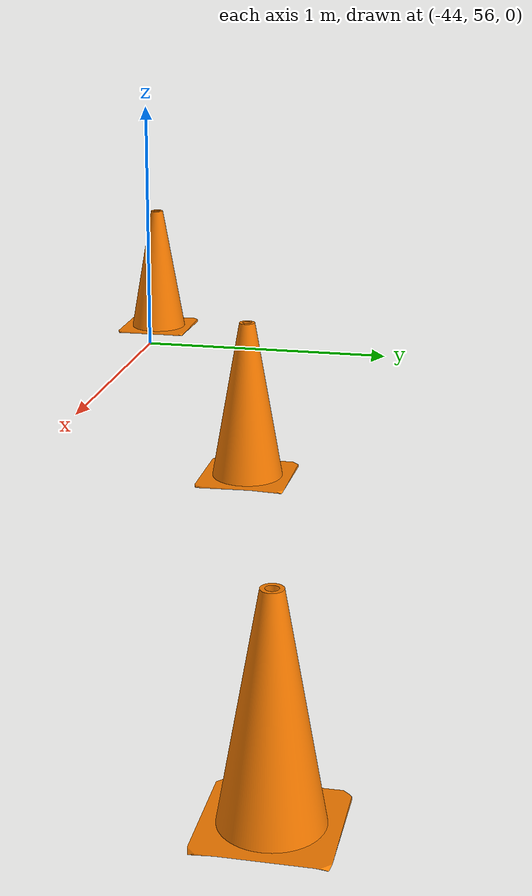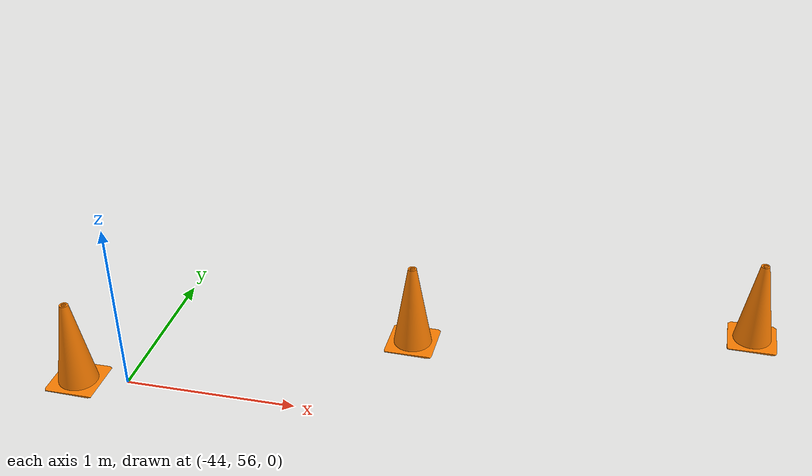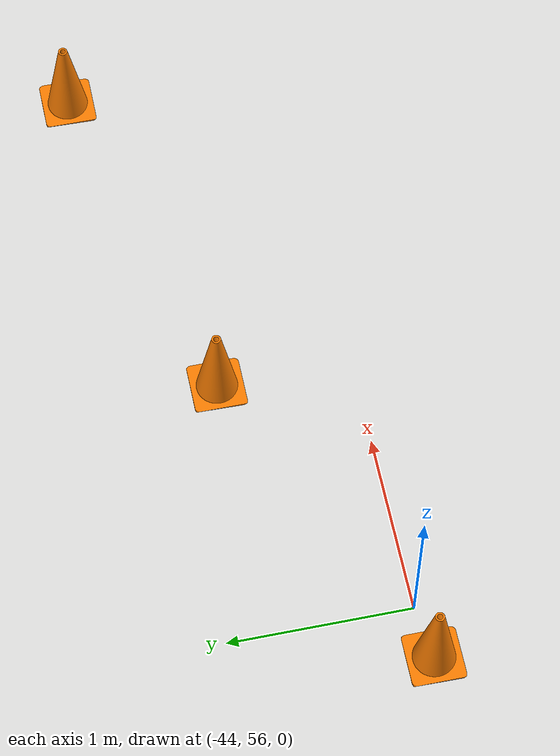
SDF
<sdf version="1.7">
 <world name="IARRC Urban">
  <model name="TallerCone_clone_105">
   <link name="link_0">
    <inertial>
     <mass>0.068</mass>
     <inertia>
      <ixx>0.000367263</ixx>
      <ixy>0</ixy>
      <ixz>0</ixz>
      <iyy>0.000367263</iyy>
      <iyz>0</iyz>
      <izz>0.000165927</izz>
     </inertia>
    </inertial>
    <visual name="visual">
     <geometry><mesh><uri>model://TallerCone/traffic_cone.stl</uri><scale>0.01 0.01 0.01</scale></mesh></geometry>
     <material>
      <lighting>1</lighting>
      <script><uri>file://media/materials/scripts/gazebo.material</uri><name>Gazebo/Grey</name></script>
      <ambient>0.4 0.2 0 1</ambient>
      <diffuse>1 0.5 0 1</diffuse>
      <specular>0.01 0.01 0.01 1</specular>
      <emissive>0 0 0 1</emissive>
     </material>
    </visual>
    <collision name="collision">
     <geometry><mesh><uri>model://TallerCone/traffic_cone.stl</uri></mesh></geometry>
     <surface>
      <friction>
       <ode><mu>1</mu><mu2>1</mu2><fdir1>0 0 0</fdir1><slip1>0</slip1><slip2>0</slip2></ode>
       <torsional>
        <coefficient>1</coefficient>
        <patch_radius>0</patch_radius>
        <surface_radius>0</surface_radius>
        <use_patch_radius>1</use_patch_radius>
        <ode><slip>0</slip></ode>
       </torsional>
      </friction>
      <bounce><restitution_coefficient>0</restitution_coefficient><threshold>1e+06</threshold></bounce>
      <contact>
       <collide_without_contact>0</collide_without_contact>
       <collide_without_contact_bitmask>1</collide_without_contact_bitmask>
       <collide_bitmask>1</collide_bitmask>
       <ode>
        <soft_cfm>0</soft_cfm>
        <soft_erp>0.2</soft_erp>
        <kp>1e+13</kp>
        <kd>1</kd>
        <max_vel>0.01</max_vel>
        <min_depth>0</min_depth>
       </ode>
       <bullet>
        <split_impulse>1</split_impulse>
        <split_impulse_penetration_threshold>-0.01</split_impulse_penetration_threshold>
        <soft_cfm>0</soft_cfm>
        <soft_erp>0.2</soft_erp>
        <kp>1e+13</kp>
        <kd>1</kd>
       </bullet>
      </contact>
     </surface>
    </collision>
   </link>
   <static>1</static>
   <pose>-40.5088 57.229 -0.034283 0 -0 0</pose>
  </model>
  <model name="TallerCone_clone_106">
   <link name="link_0">
    <inertial>
     <mass>0.068</mass>
     <inertia>
      <ixx>0.000367263</ixx>
      <ixy>0</ixy>
      <ixz>0</ixz>
      <iyy>0.000367263</iyy>
      <iyz>0</iyz>
      <izz>0.000165927</izz>
     </inertia>
    </inertial>
    <visual name="visual">
     <geometry><mesh><uri>model://TallerCone/traffic_cone.stl</uri><scale>0.01 0.01 0.01</scale></mesh></geometry>
     <material>
      <lighting>1</lighting>
      <script><uri>file://media/materials/scripts/gazebo.material</uri><name>Gazebo/Grey</name></script>
      <ambient>0.4 0.2 0 1</ambient>
      <diffuse>1 0.5 0 1</diffuse>
      <specular>0.01 0.01 0.01 1</specular>
      <emissive>0 0 0 1</emissive>
     </material>
    </visual>
    <collision name="collision">
     <geometry><mesh><uri>model://TallerCone/traffic_cone.stl</uri></mesh></geometry>
     <surface>
      <friction>
       <ode><mu>1</mu><mu2>1</mu2><fdir1>0 0 0</fdir1><slip1>0</slip1><slip2>0</slip2></ode>
       <torsional>
        <coefficient>1</coefficient>
        <patch_radius>0</patch_radius>
        <surface_radius>0</surface_radius>
        <use_patch_radius>1</use_patch_radius>
        <ode><slip>0</slip></ode>
       </torsional>
      </friction>
      <bounce><restitution_coefficient>0</restitution_coefficient><threshold>1e+06</threshold></bounce>
      <contact>
       <collide_without_contact>0</collide_without_contact>
       <collide_without_contact_bitmask>1</collide_without_contact_bitmask>
       <collide_bitmask>1</collide_bitmask>
       <ode>
        <soft_cfm>0</soft_cfm>
        <soft_erp>0.2</soft_erp>
        <kp>1e+13</kp>
        <kd>1</kd>
        <max_vel>0.01</max_vel>
        <min_depth>0</min_depth>
       </ode>
       <bullet>
        <split_impulse>1</split_impulse>
        <split_impulse_penetration_threshold>-0.01</split_impulse_penetration_threshold>
        <soft_cfm>0</soft_cfm>
        <soft_erp>0.2</soft_erp>
        <kp>1e+13</kp>
        <kd>1</kd>
       </bullet>
      </contact>
     </surface>
    </collision>
   </link>
   <static>1</static>
   <pose>-42.4975 56.748 -0.034283 0 -0 0</pose>
  </model>
  <model name="TallerCone_clone_107">
   <link name="link_0">
    <inertial>
     <mass>0.068</mass>
     <inertia>
      <ixx>0.000367263</ixx>
      <ixy>0</ixy>
      <ixz>0</ixz>
      <iyy>0.000367263</iyy>
      <iyz>0</iyz>
      <izz>0.000165927</izz>
     </inertia>
    </inertial>
    <visual name="visual">
     <geometry><mesh><uri>model://TallerCone/traffic_cone.stl</uri><scale>0.01 0.01 0.01</scale></mesh></geometry>
     <material>
      <lighting>1</lighting>
      <script><uri>file://media/materials/scripts/gazebo.material</uri><name>Gazebo/Grey</name></script>
      <ambient>0.4 0.2 0 1</ambient>
      <diffuse>1 0.5 0 1</diffuse>
      <specular>0.01 0.01 0.01 1</specular>
      <emissive>0 0 0 1</emissive>
     </material>
    </visual>
    <collision name="collision">
     <geometry><mesh><uri>model://TallerCone/traffic_cone.stl</uri></mesh></geometry>
     <surface>
      <friction>
       <ode><mu>1</mu><mu2>1</mu2><fdir1>0 0 0</fdir1><slip1>0</slip1><slip2>0</slip2></ode>
       <torsional>
        <coefficient>1</coefficient>
        <patch_radius>0</patch_radius>
        <surface_radius>0</surface_radius>
        <use_patch_radius>1</use_patch_radius>
        <ode><slip>0</slip></ode>
       </torsional>
      </friction>
      <bounce><restitution_coefficient>0</restitution_coefficient><threshold>1e+06</threshold></bounce>
      <contact>
       <collide_without_contact>0</collide_without_contact>
       <collide_without_contact_bitmask>1</collide_without_contact_bitmask>
       <collide_bitmask>1</collide_bitmask>
       <ode>
        <soft_cfm>0</soft_cfm>
        <soft_erp>0.2</soft_erp>
        <kp>1e+13</kp>
        <kd>1</kd>
        <max_vel>0.01</max_vel>
        <min_depth>0</min_depth>
       </ode>
       <bullet>
        <split_impulse>1</split_impulse>
        <split_impulse_penetration_threshold>-0.01</split_impulse_penetration_threshold>
        <soft_cfm>0</soft_cfm>
        <soft_erp>0.2</soft_erp>
        <kp>1e+13</kp>
        <kd>1</kd>
       </bullet>
      </contact>
     </surface>
    </collision>
   </link>
   <static>1</static>
   <pose>-44.2858 55.961 -0.034283 0 -0 0</pose>
  </model>
 </world>
</sdf>
